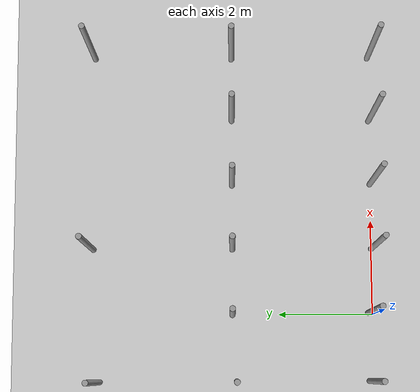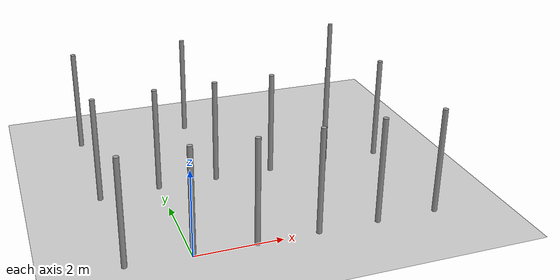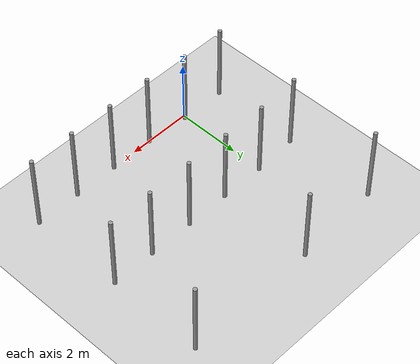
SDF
<sdf version="1.6">
 <world name="default">
  <model name="ground_plane">
   <static>1</static>
   <link name="link">
    <collision name="collision">
     <geometry><plane><normal>0 0 1</normal><size>100 100</size></plane></geometry>
     <surface><friction><ode><mu>100</mu><mu2>50</mu2></ode></friction></surface>
    </collision>
    <visual name="visual">
     <cast_shadows>0</cast_shadows>
     <geometry><plane><normal>0 0 1</normal><size>100 100</size></plane></geometry>
     <material>
      <script><uri>file://media/materials/scripts/gazebo.material</uri><name>Gazebo/Grey</name></script>
     </material>
    </visual>
   </link>
  </model>
  <model name="pole_8">
   <link name="link_0">
    <inertial>
     <mass>0.0364582</mass>
     <inertia>
      <ixx>0.00312124</ixx>
      <ixy>0</ixy>
      <ixz>0</ixz>
      <iyy>0.00312124</iyy>
      <iyz>0</iyz>
      <izz>0.00016615</izz>
     </inertia>
    </inertial>
    <visual name="visual">
     <geometry><cylinder><radius>0.06</radius><length>2.5</length></cylinder></geometry>
     <material>
      <lighting>1</lighting>
      <script><uri>file://media/materials/scripts/gazebo.material</uri><name>Gazebo/Grey</name></script>
      <ambient>0.3 0.3 0.3 1</ambient>
      <diffuse>0.7 0.7 0.7 1</diffuse>
      <specular>0.01 0.01 0.01 1</specular>
      <emissive>0 0 0 1</emissive>
      <shader type="vertex"><normal_map>__default__</normal_map></shader>
     </material>
    </visual>
    <collision name="collision">
     <geometry><cylinder><radius>0.06</radius><length>2.5</length></cylinder></geometry>
     <surface>
      <friction>
       <ode><mu>1</mu><mu2>1</mu2><fdir1>0 0 0</fdir1><slip1>0</slip1><slip2>0</slip2></ode>
       <torsional>
        <coefficient>1</coefficient>
        <patch_radius>0</patch_radius>
        <surface_radius>0</surface_radius>
        <use_patch_radius>1</use_patch_radius>
        <ode><slip>0</slip></ode>
       </torsional>
      </friction>
      <bounce><restitution_coefficient>0</restitution_coefficient><threshold>1e+06</threshold></bounce>
      <contact>
       <collide_without_contact>0</collide_without_contact>
       <collide_without_contact_bitmask>1</collide_without_contact_bitmask>
       <collide_bitmask>1</collide_bitmask>
       <ode>
        <soft_cfm>0</soft_cfm>
        <soft_erp>0.2</soft_erp>
        <kp>1e+13</kp>
        <kd>1</kd>
        <max_vel>0.01</max_vel>
        <min_depth>0</min_depth>
       </ode>
       <bullet>
        <split_impulse>1</split_impulse>
        <split_impulse_penetration_threshold>-0.01</split_impulse_penetration_threshold>
        <soft_cfm>0</soft_cfm>
        <soft_erp>0.2</soft_erp>
        <kp>1e+13</kp>
        <kd>1</kd>
       </bullet>
      </contact>
     </surface>
    </collision>
   </link>
   <static>0</static>
   <pose>1.40423 0.001539 1.24999 -1e-06 -0 -0.019471</pose>
  </model>
  <model name="pole_9">
   <link name="link_0">
    <inertial>
     <mass>0.0364582</mass>
     <inertia>
      <ixx>0.00312124</ixx>
      <ixy>0</ixy>
      <ixz>0</ixz>
      <iyy>0.00312124</iyy>
      <iyz>0</iyz>
      <izz>0.00016615</izz>
     </inertia>
    </inertial>
    <visual name="visual">
     <geometry><cylinder><radius>0.06</radius><length>2.5</length></cylinder></geometry>
     <material>
      <lighting>1</lighting>
      <script><uri>file://media/materials/scripts/gazebo.material</uri><name>Gazebo/Grey</name></script>
      <ambient>0.3 0.3 0.3 1</ambient>
      <diffuse>0.7 0.7 0.7 1</diffuse>
      <specular>0.01 0.01 0.01 1</specular>
      <emissive>0 0 0 1</emissive>
      <shader type="vertex"><normal_map>__default__</normal_map></shader>
     </material>
    </visual>
    <collision name="collision">
     <geometry><cylinder><radius>0.06</radius><length>2.5</length></cylinder></geometry>
     <surface>
      <friction>
       <ode><mu>1</mu><mu2>1</mu2><fdir1>0 0 0</fdir1><slip1>0</slip1><slip2>0</slip2></ode>
       <torsional>
        <coefficient>1</coefficient>
        <patch_radius>0</patch_radius>
        <surface_radius>0</surface_radius>
        <use_patch_radius>1</use_patch_radius>
        <ode><slip>0</slip></ode>
       </torsional>
      </friction>
      <bounce><restitution_coefficient>0</restitution_coefficient><threshold>1e+06</threshold></bounce>
      <contact>
       <collide_without_contact>0</collide_without_contact>
       <collide_without_contact_bitmask>1</collide_without_contact_bitmask>
       <collide_bitmask>1</collide_bitmask>
       <ode>
        <soft_cfm>0</soft_cfm>
        <soft_erp>0.2</soft_erp>
        <kp>1e+13</kp>
        <kd>1</kd>
        <max_vel>0.01</max_vel>
        <min_depth>0</min_depth>
       </ode>
       <bullet>
        <split_impulse>1</split_impulse>
        <split_impulse_penetration_threshold>-0.01</split_impulse_penetration_threshold>
        <soft_cfm>0</soft_cfm>
        <soft_erp>0.2</soft_erp>
        <kp>1e+13</kp>
        <kd>1</kd>
       </bullet>
      </contact>
     </surface>
    </collision>
   </link>
   <static>0</static>
   <pose>2.80806 0.001853 1.25 -1e-06 1e-06 -0.039469</pose>
  </model>
  <model name="pole_10">
   <link name="link_0">
    <inertial>
     <mass>0.0364582</mass>
     <inertia>
      <ixx>0.00312124</ixx>
      <ixy>0</ixy>
      <ixz>0</ixz>
      <iyy>0.00312124</iyy>
      <iyz>0</iyz>
      <izz>0.00016615</izz>
     </inertia>
    </inertial>
    <visual name="visual">
     <geometry><cylinder><radius>0.06</radius><length>2.5</length></cylinder></geometry>
     <material>
      <lighting>1</lighting>
      <script><uri>file://media/materials/scripts/gazebo.material</uri><name>Gazebo/Grey</name></script>
      <ambient>0.3 0.3 0.3 1</ambient>
      <diffuse>0.7 0.7 0.7 1</diffuse>
      <specular>0.01 0.01 0.01 1</specular>
      <emissive>0 0 0 1</emissive>
      <shader type="vertex"><normal_map>__default__</normal_map></shader>
     </material>
    </visual>
    <collision name="collision">
     <geometry><cylinder><radius>0.06</radius><length>2.5</length></cylinder></geometry>
     <surface>
      <friction>
       <ode><mu>1</mu><mu2>1</mu2><fdir1>0 0 0</fdir1><slip1>0</slip1><slip2>0</slip2></ode>
       <torsional>
        <coefficient>1</coefficient>
        <patch_radius>0</patch_radius>
        <surface_radius>0</surface_radius>
        <use_patch_radius>1</use_patch_radius>
        <ode><slip>0</slip></ode>
       </torsional>
      </friction>
      <bounce><restitution_coefficient>0</restitution_coefficient><threshold>1e+06</threshold></bounce>
      <contact>
       <collide_without_contact>0</collide_without_contact>
       <collide_without_contact_bitmask>1</collide_without_contact_bitmask>
       <collide_bitmask>1</collide_bitmask>
       <ode>
        <soft_cfm>0</soft_cfm>
        <soft_erp>0.2</soft_erp>
        <kp>1e+13</kp>
        <kd>1</kd>
        <max_vel>0.01</max_vel>
        <min_depth>0</min_depth>
       </ode>
       <bullet>
        <split_impulse>1</split_impulse>
        <split_impulse_penetration_threshold>-0.01</split_impulse_penetration_threshold>
        <soft_cfm>0</soft_cfm>
        <soft_erp>0.2</soft_erp>
        <kp>1e+13</kp>
        <kd>1</kd>
       </bullet>
      </contact>
     </surface>
    </collision>
   </link>
   <static>0</static>
   <pose>4.20398 0.001744 1.25 -1e-06 -0 -0.023131</pose>
  </model>
  <model name="pole_11">
   <link name="link_0">
    <inertial>
     <mass>0.0364582</mass>
     <inertia>
      <ixx>0.00312124</ixx>
      <ixy>0</ixy>
      <ixz>0</ixz>
      <iyy>0.00312124</iyy>
      <iyz>0</iyz>
      <izz>0.00016615</izz>
     </inertia>
    </inertial>
    <visual name="visual">
     <geometry><cylinder><radius>0.06</radius><length>2.5</length></cylinder></geometry>
     <material>
      <lighting>1</lighting>
      <script><uri>file://media/materials/scripts/gazebo.material</uri><name>Gazebo/Grey</name></script>
      <ambient>0.3 0.3 0.3 1</ambient>
      <diffuse>0.7 0.7 0.7 1</diffuse>
      <specular>0.01 0.01 0.01 1</specular>
      <emissive>0 0 0 1</emissive>
      <shader type="vertex"><normal_map>__default__</normal_map></shader>
     </material>
    </visual>
    <collision name="collision">
     <geometry><cylinder><radius>0.06</radius><length>2.5</length></cylinder></geometry>
     <surface>
      <friction>
       <ode><mu>1</mu><mu2>1</mu2><fdir1>0 0 0</fdir1><slip1>0</slip1><slip2>0</slip2></ode>
       <torsional>
        <coefficient>1</coefficient>
        <patch_radius>0</patch_radius>
        <surface_radius>0</surface_radius>
        <use_patch_radius>1</use_patch_radius>
        <ode><slip>0</slip></ode>
       </torsional>
      </friction>
      <bounce><restitution_coefficient>0</restitution_coefficient><threshold>1e+06</threshold></bounce>
      <contact>
       <collide_without_contact>0</collide_without_contact>
       <collide_without_contact_bitmask>1</collide_without_contact_bitmask>
       <collide_bitmask>1</collide_bitmask>
       <ode>
        <soft_cfm>0</soft_cfm>
        <soft_erp>0.2</soft_erp>
        <kp>1e+13</kp>
        <kd>1</kd>
        <max_vel>0.01</max_vel>
        <min_depth>0</min_depth>
       </ode>
       <bullet>
        <split_impulse>1</split_impulse>
        <split_impulse_penetration_threshold>-0.01</split_impulse_penetration_threshold>
        <soft_cfm>0</soft_cfm>
        <soft_erp>0.2</soft_erp>
        <kp>1e+13</kp>
        <kd>1</kd>
       </bullet>
      </contact>
     </surface>
    </collision>
   </link>
   <static>0</static>
   <pose>5.61624 0.001522 1.25 -1e-06 -1e-06 -0.021984</pose>
  </model>
  <model name="pole_11_clone">
   <link name="link_0">
    <inertial>
     <mass>0.0364582</mass>
     <inertia>
      <ixx>0.00312124</ixx>
      <ixy>0</ixy>
      <ixz>0</ixz>
      <iyy>0.00312124</iyy>
      <iyz>0</iyz>
      <izz>0.00016615</izz>
     </inertia>
    </inertial>
    <visual name="visual">
     <geometry><cylinder><radius>0.06</radius><length>2.5</length></cylinder></geometry>
     <material>
      <lighting>1</lighting>
      <script><uri>file://media/materials/scripts/gazebo.material</uri><name>Gazebo/Grey</name></script>
      <ambient>0.3 0.3 0.3 1</ambient>
      <diffuse>0.7 0.7 0.7 1</diffuse>
      <specular>0.01 0.01 0.01 1</specular>
      <emissive>0 0 0 1</emissive>
      <shader type="vertex"><normal_map>__default__</normal_map></shader>
     </material>
    </visual>
    <collision name="collision">
     <geometry><cylinder><radius>0.06</radius><length>2.5</length></cylinder></geometry>
     <surface>
      <friction>
       <ode><mu>1</mu><mu2>1</mu2><fdir1>0 0 0</fdir1><slip1>0</slip1><slip2>0</slip2></ode>
       <torsional>
        <coefficient>1</coefficient>
        <patch_radius>0</patch_radius>
        <surface_radius>0</surface_radius>
        <use_patch_radius>1</use_patch_radius>
        <ode><slip>0</slip></ode>
       </torsional>
      </friction>
      <bounce><restitution_coefficient>0</restitution_coefficient><threshold>1e+06</threshold></bounce>
      <contact>
       <collide_without_contact>0</collide_without_contact>
       <collide_without_contact_bitmask>1</collide_without_contact_bitmask>
       <collide_bitmask>1</collide_bitmask>
       <ode>
        <soft_cfm>0</soft_cfm>
        <soft_erp>0.2</soft_erp>
        <kp>1e+13</kp>
        <kd>1</kd>
        <max_vel>0.01</max_vel>
        <min_depth>0</min_depth>
       </ode>
       <bullet>
        <split_impulse>1</split_impulse>
        <split_impulse_penetration_threshold>-0.01</split_impulse_penetration_threshold>
        <soft_cfm>0</soft_cfm>
        <soft_erp>0.2</soft_erp>
        <kp>1e+13</kp>
        <kd>1</kd>
       </bullet>
      </contact>
     </surface>
    </collision>
   </link>
   <static>0</static>
   <pose>0.00073 2.98389 1.25 0 -1e-06 -0.029217</pose>
  </model>
  <model name="pole_2">
   <link name="link_0">
    <inertial>
     <mass>0.0364582</mass>
     <inertia>
      <ixx>0.00312124</ixx>
      <ixy>0</ixy>
      <ixz>0</ixz>
      <iyy>0.00312124</iyy>
      <iyz>0</iyz>
      <izz>0.00016615</izz>
     </inertia>
    </inertial>
    <visual name="visual">
     <geometry><cylinder><radius>0.06</radius><length>2.5</length></cylinder></geometry>
     <material>
      <lighting>1</lighting>
      <script><uri>file://media/materials/scripts/gazebo.material</uri><name>Gazebo/Grey</name></script>
      <ambient>0.3 0.3 0.3 1</ambient>
      <diffuse>0.7 0.7 0.7 1</diffuse>
      <specular>0.01 0.01 0.01 1</specular>
      <emissive>0 0 0 1</emissive>
      <shader type="vertex"><normal_map>__default__</normal_map></shader>
     </material>
    </visual>
    <collision name="collision">
     <geometry><cylinder><radius>0.06</radius><length>2.5</length></cylinder></geometry>
     <surface>
      <friction>
       <ode><mu>1</mu><mu2>1</mu2><fdir1>0 0 0</fdir1><slip1>0</slip1><slip2>0</slip2></ode>
       <torsional>
        <coefficient>1</coefficient>
        <patch_radius>0</patch_radius>
        <surface_radius>0</surface_radius>
        <use_patch_radius>1</use_patch_radius>
        <ode><slip>0</slip></ode>
       </torsional>
      </friction>
      <bounce><restitution_coefficient>0</restitution_coefficient><threshold>1e+06</threshold></bounce>
      <contact>
       <collide_without_contact>0</collide_without_contact>
       <collide_without_contact_bitmask>1</collide_without_contact_bitmask>
       <collide_bitmask>1</collide_bitmask>
       <ode>
        <soft_cfm>0</soft_cfm>
        <soft_erp>0.2</soft_erp>
        <kp>1e+13</kp>
        <kd>1</kd>
        <max_vel>0.01</max_vel>
        <min_depth>0</min_depth>
       </ode>
       <bullet>
        <split_impulse>1</split_impulse>
        <split_impulse_penetration_threshold>-0.01</split_impulse_penetration_threshold>
        <soft_cfm>0</soft_cfm>
        <soft_erp>0.2</soft_erp>
        <kp>1e+13</kp>
        <kd>1</kd>
       </bullet>
      </contact>
     </surface>
    </collision>
   </link>
   <static>0</static>
   <pose>0.034226 0.094479 1.25 -1e-06 -1e-06 0.044999</pose>
  </model>
  <model name="pole_3">
   <link name="link_0">
    <inertial>
     <mass>0.0364582</mass>
     <inertia>
      <ixx>0.00312124</ixx>
      <ixy>0</ixy>
      <ixz>0</ixz>
      <iyy>0.00312124</iyy>
      <iyz>0</iyz>
      <izz>0.00016615</izz>
     </inertia>
    </inertial>
    <visual name="visual">
     <geometry><cylinder><radius>0.06</radius><length>2.5</length></cylinder></geometry>
     <material>
      <lighting>1</lighting>
      <script><uri>file://media/materials/scripts/gazebo.material</uri><name>Gazebo/Grey</name></script>
      <ambient>0.3 0.3 0.3 1</ambient>
      <diffuse>0.7 0.7 0.7 1</diffuse>
      <specular>0.01 0.01 0.01 1</specular>
      <emissive>0 0 0 1</emissive>
      <shader type="vertex"><normal_map>__default__</normal_map></shader>
     </material>
    </visual>
    <collision name="collision">
     <geometry><cylinder><radius>0.06</radius><length>2.5</length></cylinder></geometry>
     <surface>
      <friction>
       <ode><mu>1</mu><mu2>1</mu2><fdir1>0 0 0</fdir1><slip1>0</slip1><slip2>0</slip2></ode>
       <torsional>
        <coefficient>1</coefficient>
        <patch_radius>0</patch_radius>
        <surface_radius>0</surface_radius>
        <use_patch_radius>1</use_patch_radius>
        <ode><slip>0</slip></ode>
       </torsional>
      </friction>
      <bounce><restitution_coefficient>0</restitution_coefficient><threshold>1e+06</threshold></bounce>
      <contact>
       <collide_without_contact>0</collide_without_contact>
       <collide_without_contact_bitmask>1</collide_without_contact_bitmask>
       <collide_bitmask>1</collide_bitmask>
       <ode>
        <soft_cfm>0</soft_cfm>
        <soft_erp>0.2</soft_erp>
        <kp>1e+13</kp>
        <kd>1</kd>
        <max_vel>0.01</max_vel>
        <min_depth>0</min_depth>
       </ode>
       <bullet>
        <split_impulse>1</split_impulse>
        <split_impulse_penetration_threshold>-0.01</split_impulse_penetration_threshold>
        <soft_cfm>0</soft_cfm>
        <soft_erp>0.2</soft_erp>
        <kp>1e+13</kp>
        <kd>1</kd>
       </bullet>
      </contact>
     </surface>
    </collision>
   </link>
   <static>0</static>
   <pose>1.40475 2.98137 1.25 -1e-06 1e-06 -0.015925</pose>
  </model>
  <model name="pole_5">
   <link name="link_0">
    <inertial>
     <mass>0.0364582</mass>
     <inertia>
      <ixx>0.00312124</ixx>
      <ixy>0</ixy>
      <ixz>0</ixz>
      <iyy>0.00312124</iyy>
      <iyz>0</iyz>
      <izz>0.00016615</izz>
     </inertia>
    </inertial>
    <visual name="visual">
     <geometry><cylinder><radius>0.06</radius><length>2.5</length></cylinder></geometry>
     <material>
      <lighting>1</lighting>
      <script><uri>file://media/materials/scripts/gazebo.material</uri><name>Gazebo/Grey</name></script>
      <ambient>0.3 0.3 0.3 1</ambient>
      <diffuse>0.7 0.7 0.7 1</diffuse>
      <specular>0.01 0.01 0.01 1</specular>
      <emissive>0 0 0 1</emissive>
      <shader type="vertex"><normal_map>__default__</normal_map></shader>
     </material>
    </visual>
    <collision name="collision">
     <geometry><cylinder><radius>0.06</radius><length>2.5</length></cylinder></geometry>
     <surface>
      <friction>
       <ode><mu>1</mu><mu2>1</mu2><fdir1>0 0 0</fdir1><slip1>0</slip1><slip2>0</slip2></ode>
       <torsional>
        <coefficient>1</coefficient>
        <patch_radius>0</patch_radius>
        <surface_radius>0</surface_radius>
        <use_patch_radius>1</use_patch_radius>
        <ode><slip>0</slip></ode>
       </torsional>
      </friction>
      <bounce><restitution_coefficient>0</restitution_coefficient><threshold>1e+06</threshold></bounce>
      <contact>
       <collide_without_contact>0</collide_without_contact>
       <collide_without_contact_bitmask>1</collide_without_contact_bitmask>
       <collide_bitmask>1</collide_bitmask>
       <ode>
        <soft_cfm>0</soft_cfm>
        <soft_erp>0.2</soft_erp>
        <kp>1e+13</kp>
        <kd>1</kd>
        <max_vel>0.01</max_vel>
        <min_depth>0</min_depth>
       </ode>
       <bullet>
        <split_impulse>1</split_impulse>
        <split_impulse_penetration_threshold>-0.01</split_impulse_penetration_threshold>
        <soft_cfm>0</soft_cfm>
        <soft_erp>0.2</soft_erp>
        <kp>1e+13</kp>
        <kd>1</kd>
       </bullet>
      </contact>
     </surface>
    </collision>
   </link>
   <static>0</static>
   <pose>2.79586 2.98136 1.25 -1e-06 -1e-06 -0.016559</pose>
  </model>
  <model name="pole_6">
   <link name="link_0">
    <inertial>
     <mass>0.0364582</mass>
     <inertia>
      <ixx>0.00312124</ixx>
      <ixy>0</ixy>
      <ixz>0</ixz>
      <iyy>0.00312124</iyy>
      <iyz>0</iyz>
      <izz>0.00016615</izz>
     </inertia>
    </inertial>
    <visual name="visual">
     <geometry><cylinder><radius>0.06</radius><length>2.5</length></cylinder></geometry>
     <material>
      <lighting>1</lighting>
      <script><uri>file://media/materials/scripts/gazebo.material</uri><name>Gazebo/Grey</name></script>
      <ambient>0.3 0.3 0.3 1</ambient>
      <diffuse>0.7 0.7 0.7 1</diffuse>
      <specular>0.01 0.01 0.01 1</specular>
      <emissive>0 0 0 1</emissive>
      <shader type="vertex"><normal_map>__default__</normal_map></shader>
     </material>
    </visual>
    <collision name="collision">
     <geometry><cylinder><radius>0.06</radius><length>2.5</length></cylinder></geometry>
     <surface>
      <friction>
       <ode><mu>1</mu><mu2>1</mu2><fdir1>0 0 0</fdir1><slip1>0</slip1><slip2>0</slip2></ode>
       <torsional>
        <coefficient>1</coefficient>
        <patch_radius>0</patch_radius>
        <surface_radius>0</surface_radius>
        <use_patch_radius>1</use_patch_radius>
        <ode><slip>0</slip></ode>
       </torsional>
      </friction>
      <bounce><restitution_coefficient>0</restitution_coefficient><threshold>1e+06</threshold></bounce>
      <contact>
       <collide_without_contact>0</collide_without_contact>
       <collide_without_contact_bitmask>1</collide_without_contact_bitmask>
       <collide_bitmask>1</collide_bitmask>
       <ode>
        <soft_cfm>0</soft_cfm>
        <soft_erp>0.2</soft_erp>
        <kp>1e+13</kp>
        <kd>1</kd>
        <max_vel>0.01</max_vel>
        <min_depth>0</min_depth>
       </ode>
       <bullet>
        <split_impulse>1</split_impulse>
        <split_impulse_penetration_threshold>-0.01</split_impulse_penetration_threshold>
        <soft_cfm>0</soft_cfm>
        <soft_erp>0.2</soft_erp>
        <kp>1e+13</kp>
        <kd>1</kd>
       </bullet>
      </contact>
     </surface>
    </collision>
   </link>
   <static>0</static>
   <pose>4.22241 2.98121 1.25 -1e-06 1e-06 -0.014336</pose>
  </model>
  <model name="pole_7">
   <link name="link_0">
    <inertial>
     <mass>0.0364582</mass>
     <inertia>
      <ixx>0.00312124</ixx>
      <ixy>0</ixy>
      <ixz>0</ixz>
      <iyy>0.00312124</iyy>
      <iyz>0</iyz>
      <izz>0.00016615</izz>
     </inertia>
    </inertial>
    <visual name="visual">
     <geometry><cylinder><radius>0.06</radius><length>2.5</length></cylinder></geometry>
     <material>
      <lighting>1</lighting>
      <script><uri>file://media/materials/scripts/gazebo.material</uri><name>Gazebo/Grey</name></script>
      <ambient>0.3 0.3 0.3 1</ambient>
      <diffuse>0.7 0.7 0.7 1</diffuse>
      <specular>0.01 0.01 0.01 1</specular>
      <emissive>0 0 0 1</emissive>
      <shader type="vertex"><normal_map>__default__</normal_map></shader>
     </material>
    </visual>
    <collision name="collision">
     <geometry><cylinder><radius>0.06</radius><length>2.5</length></cylinder></geometry>
     <surface>
      <friction>
       <ode><mu>1</mu><mu2>1</mu2><fdir1>0 0 0</fdir1><slip1>0</slip1><slip2>0</slip2></ode>
       <torsional>
        <coefficient>1</coefficient>
        <patch_radius>0</patch_radius>
        <surface_radius>0</surface_radius>
        <use_patch_radius>1</use_patch_radius>
        <ode><slip>0</slip></ode>
       </torsional>
      </friction>
      <bounce><restitution_coefficient>0</restitution_coefficient><threshold>1e+06</threshold></bounce>
      <contact>
       <collide_without_contact>0</collide_without_contact>
       <collide_without_contact_bitmask>1</collide_without_contact_bitmask>
       <collide_bitmask>1</collide_bitmask>
       <ode>
        <soft_cfm>0</soft_cfm>
        <soft_erp>0.2</soft_erp>
        <kp>1e+13</kp>
        <kd>1</kd>
        <max_vel>0.01</max_vel>
        <min_depth>0</min_depth>
       </ode>
       <bullet>
        <split_impulse>1</split_impulse>
        <split_impulse_penetration_threshold>-0.01</split_impulse_penetration_threshold>
        <soft_cfm>0</soft_cfm>
        <soft_erp>0.2</soft_erp>
        <kp>1e+13</kp>
        <kd>1</kd>
       </bullet>
      </contact>
     </surface>
    </collision>
   </link>
   <static>0</static>
   <pose>5.60737 2.98126 1.25 1e-06 3e-06 -0.014952</pose>
  </model>
  <model name="pole_12">
   <link name="link_0">
    <inertial>
     <mass>0.0364582</mass>
     <inertia>
      <ixx>0.00312124</ixx>
      <ixy>0</ixy>
      <ixz>0</ixz>
      <iyy>0.00312124</iyy>
      <iyz>0</iyz>
      <izz>0.00016615</izz>
     </inertia>
    </inertial>
    <visual name="visual">
     <geometry><cylinder><radius>0.06</radius><length>2.5</length></cylinder></geometry>
     <material>
      <lighting>1</lighting>
      <script><uri>file://media/materials/scripts/gazebo.material</uri><name>Gazebo/Grey</name></script>
      <ambient>0.3 0.3 0.3 1</ambient>
      <diffuse>0.7 0.7 0.7 1</diffuse>
      <specular>0.01 0.01 0.01 1</specular>
      <emissive>0 0 0 1</emissive>
      <shader type="vertex"><normal_map>__default__</normal_map></shader>
     </material>
    </visual>
    <collision name="collision">
     <geometry><cylinder><radius>0.06</radius><length>2.5</length></cylinder></geometry>
     <surface>
      <friction>
       <ode><mu>1</mu><mu2>1</mu2><fdir1>0 0 0</fdir1><slip1>0</slip1><slip2>0</slip2></ode>
       <torsional>
        <coefficient>1</coefficient>
        <patch_radius>0</patch_radius>
        <surface_radius>0</surface_radius>
        <use_patch_radius>1</use_patch_radius>
        <ode><slip>0</slip></ode>
       </torsional>
      </friction>
      <bounce><restitution_coefficient>0</restitution_coefficient><threshold>1e+06</threshold></bounce>
      <contact>
       <collide_without_contact>0</collide_without_contact>
       <collide_without_contact_bitmask>1</collide_without_contact_bitmask>
       <collide_bitmask>1</collide_bitmask>
       <ode>
        <soft_cfm>0</soft_cfm>
        <soft_erp>0.2</soft_erp>
        <kp>1e+13</kp>
        <kd>1</kd>
        <max_vel>0.01</max_vel>
        <min_depth>0</min_depth>
       </ode>
       <bullet>
        <split_impulse>1</split_impulse>
        <split_impulse_penetration_threshold>-0.01</split_impulse_penetration_threshold>
        <soft_cfm>0</soft_cfm>
        <soft_erp>0.2</soft_erp>
        <kp>1e+13</kp>
        <kd>1</kd>
       </bullet>
      </contact>
     </surface>
    </collision>
   </link>
   <static>0</static>
   <pose>1.41364 5.96122 1.24999 -1e-06 4e-06 -0.013851</pose>
  </model>
  <model name="pole_15">
   <link name="link_0">
    <inertial>
     <mass>0.0364582</mass>
     <inertia>
      <ixx>0.00312124</ixx>
      <ixy>0</ixy>
      <ixz>0</ixz>
      <iyy>0.00312124</iyy>
      <iyz>0</iyz>
      <izz>0.00016615</izz>
     </inertia>
    </inertial>
    <visual name="visual">
     <geometry><cylinder><radius>0.06</radius><length>2.5</length></cylinder></geometry>
     <material>
      <lighting>1</lighting>
      <script><uri>file://media/materials/scripts/gazebo.material</uri><name>Gazebo/Grey</name></script>
      <ambient>0.3 0.3 0.3 1</ambient>
      <diffuse>0.7 0.7 0.7 1</diffuse>
      <specular>0.01 0.01 0.01 1</specular>
      <emissive>0 0 0 1</emissive>
      <shader type="vertex"><normal_map>__default__</normal_map></shader>
     </material>
    </visual>
    <collision name="collision">
     <geometry><cylinder><radius>0.06</radius><length>2.5</length></cylinder></geometry>
     <surface>
      <friction>
       <ode><mu>1</mu><mu2>1</mu2><fdir1>0 0 0</fdir1><slip1>0</slip1><slip2>0</slip2></ode>
       <torsional>
        <coefficient>1</coefficient>
        <patch_radius>0</patch_radius>
        <surface_radius>0</surface_radius>
        <use_patch_radius>1</use_patch_radius>
        <ode><slip>0</slip></ode>
       </torsional>
      </friction>
      <bounce><restitution_coefficient>0</restitution_coefficient><threshold>1e+06</threshold></bounce>
      <contact>
       <collide_without_contact>0</collide_without_contact>
       <collide_without_contact_bitmask>1</collide_without_contact_bitmask>
       <collide_bitmask>1</collide_bitmask>
       <ode>
        <soft_cfm>0</soft_cfm>
        <soft_erp>0.2</soft_erp>
        <kp>1e+13</kp>
        <kd>1</kd>
        <max_vel>0.01</max_vel>
        <min_depth>0</min_depth>
       </ode>
       <bullet>
        <split_impulse>1</split_impulse>
        <split_impulse_penetration_threshold>-0.01</split_impulse_penetration_threshold>
        <soft_cfm>0</soft_cfm>
        <soft_erp>0.2</soft_erp>
        <kp>1e+13</kp>
        <kd>1</kd>
       </bullet>
      </contact>
     </surface>
    </collision>
   </link>
   <static>0</static>
   <pose>5.6235 5.96097 1.25 -1e-06 1e-06 -0.010208</pose>
  </model>
  <model name="pole_2_clone">
   <link name="link_0">
    <inertial>
     <mass>0.0364582</mass>
     <inertia>
      <ixx>0.00312124</ixx>
      <ixy>0</ixy>
      <ixz>0</ixz>
      <iyy>0.00312124</iyy>
      <iyz>0</iyz>
      <izz>0.00016615</izz>
     </inertia>
    </inertial>
    <visual name="visual">
     <geometry><cylinder><radius>0.06</radius><length>2.5</length></cylinder></geometry>
     <material>
      <lighting>1</lighting>
      <script><uri>file://media/materials/scripts/gazebo.material</uri><name>Gazebo/Grey</name></script>
      <ambient>0.3 0.3 0.3 1</ambient>
      <diffuse>0.7 0.7 0.7 1</diffuse>
      <specular>0.01 0.01 0.01 1</specular>
      <emissive>0 0 0 1</emissive>
      <shader type="vertex"><normal_map>__default__</normal_map></shader>
     </material>
    </visual>
    <collision name="collision">
     <geometry><cylinder><radius>0.06</radius><length>2.5</length></cylinder></geometry>
     <surface>
      <friction>
       <ode><mu>1</mu><mu2>1</mu2><fdir1>0 0 0</fdir1><slip1>0</slip1><slip2>0</slip2></ode>
       <torsional>
        <coefficient>1</coefficient>
        <patch_radius>0</patch_radius>
        <surface_radius>0</surface_radius>
        <use_patch_radius>1</use_patch_radius>
        <ode><slip>0</slip></ode>
       </torsional>
      </friction>
      <bounce><restitution_coefficient>0</restitution_coefficient><threshold>1e+06</threshold></bounce>
      <contact>
       <collide_without_contact>0</collide_without_contact>
       <collide_without_contact_bitmask>1</collide_without_contact_bitmask>
       <collide_bitmask>1</collide_bitmask>
       <ode>
        <soft_cfm>0</soft_cfm>
        <soft_erp>0.2</soft_erp>
        <kp>1e+13</kp>
        <kd>1</kd>
        <max_vel>0.01</max_vel>
        <min_depth>0</min_depth>
       </ode>
       <bullet>
        <split_impulse>1</split_impulse>
        <split_impulse_penetration_threshold>-0.01</split_impulse_penetration_threshold>
        <soft_cfm>0</soft_cfm>
        <soft_erp>0.2</soft_erp>
        <kp>1e+13</kp>
        <kd>1</kd>
       </bullet>
      </contact>
     </surface>
    </collision>
   </link>
   <static>0</static>
   <pose>-1.39993 0.092328 1.25 -1e-06 -0 0.042647</pose>
  </model>
  <model name="pole_2_clone_0">
   <link name="link_0">
    <inertial>
     <mass>0.0364582</mass>
     <inertia>
      <ixx>0.00312124</ixx>
      <ixy>0</ixy>
      <ixz>0</ixz>
      <iyy>0.00312124</iyy>
      <iyz>0</iyz>
      <izz>0.00016615</izz>
     </inertia>
    </inertial>
    <visual name="visual">
     <geometry><cylinder><radius>0.06</radius><length>2.5</length></cylinder></geometry>
     <material>
      <lighting>1</lighting>
      <script><uri>file://media/materials/scripts/gazebo.material</uri><name>Gazebo/Grey</name></script>
      <ambient>0.3 0.3 0.3 1</ambient>
      <diffuse>0.7 0.7 0.7 1</diffuse>
      <specular>0.01 0.01 0.01 1</specular>
      <emissive>0 0 0 1</emissive>
      <shader type="vertex"><normal_map>__default__</normal_map></shader>
     </material>
    </visual>
    <collision name="collision">
     <geometry><cylinder><radius>0.06</radius><length>2.5</length></cylinder></geometry>
     <surface>
      <friction>
       <ode><mu>1</mu><mu2>1</mu2><fdir1>0 0 0</fdir1><slip1>0</slip1><slip2>0</slip2></ode>
       <torsional>
        <coefficient>1</coefficient>
        <patch_radius>0</patch_radius>
        <surface_radius>0</surface_radius>
        <use_patch_radius>1</use_patch_radius>
        <ode><slip>0</slip></ode>
       </torsional>
      </friction>
      <bounce><restitution_coefficient>0</restitution_coefficient><threshold>1e+06</threshold></bounce>
      <contact>
       <collide_without_contact>0</collide_without_contact>
       <collide_without_contact_bitmask>1</collide_without_contact_bitmask>
       <collide_bitmask>1</collide_bitmask>
       <ode>
        <soft_cfm>0</soft_cfm>
        <soft_erp>0.2</soft_erp>
        <kp>1e+13</kp>
        <kd>1</kd>
        <max_vel>0.01</max_vel>
        <min_depth>0</min_depth>
       </ode>
       <bullet>
        <split_impulse>1</split_impulse>
        <split_impulse_penetration_threshold>-0.01</split_impulse_penetration_threshold>
        <soft_cfm>0</soft_cfm>
        <soft_erp>0.2</soft_erp>
        <kp>1e+13</kp>
        <kd>1</kd>
       </bullet>
      </contact>
     </surface>
    </collision>
   </link>
   <static>0</static>
   <pose>-1.39995 2.90033 1.25 -1e-06 -3e-06 0.042432</pose>
  </model>
  <model name="pole_2_clone_1">
   <link name="link_0">
    <inertial>
     <mass>0.0364582</mass>
     <inertia>
      <ixx>0.00312124</ixx>
      <ixy>0</ixy>
      <ixz>0</ixz>
      <iyy>0.00312124</iyy>
      <iyz>0</iyz>
      <izz>0.00016615</izz>
     </inertia>
    </inertial>
    <visual name="visual">
     <geometry><cylinder><radius>0.06</radius><length>2.5</length></cylinder></geometry>
     <material>
      <lighting>1</lighting>
      <script><uri>file://media/materials/scripts/gazebo.material</uri><name>Gazebo/Grey</name></script>
      <ambient>0.3 0.3 0.3 1</ambient>
      <diffuse>0.7 0.7 0.7 1</diffuse>
      <specular>0.01 0.01 0.01 1</specular>
      <emissive>0 0 0 1</emissive>
      <shader type="vertex"><normal_map>__default__</normal_map></shader>
     </material>
    </visual>
    <collision name="collision">
     <geometry><cylinder><radius>0.06</radius><length>2.5</length></cylinder></geometry>
     <surface>
      <friction>
       <ode><mu>1</mu><mu2>1</mu2><fdir1>0 0 0</fdir1><slip1>0</slip1><slip2>0</slip2></ode>
       <torsional>
        <coefficient>1</coefficient>
        <patch_radius>0</patch_radius>
        <surface_radius>0</surface_radius>
        <use_patch_radius>1</use_patch_radius>
        <ode><slip>0</slip></ode>
       </torsional>
      </friction>
      <bounce><restitution_coefficient>0</restitution_coefficient><threshold>1e+06</threshold></bounce>
      <contact>
       <collide_without_contact>0</collide_without_contact>
       <collide_without_contact_bitmask>1</collide_without_contact_bitmask>
       <collide_bitmask>1</collide_bitmask>
       <ode>
        <soft_cfm>0</soft_cfm>
        <soft_erp>0.2</soft_erp>
        <kp>1e+13</kp>
        <kd>1</kd>
        <max_vel>0.01</max_vel>
        <min_depth>0</min_depth>
       </ode>
       <bullet>
        <split_impulse>1</split_impulse>
        <split_impulse_penetration_threshold>-0.01</split_impulse_penetration_threshold>
        <soft_cfm>0</soft_cfm>
        <soft_erp>0.2</soft_erp>
        <kp>1e+13</kp>
        <kd>1</kd>
       </bullet>
      </contact>
     </surface>
    </collision>
   </link>
   <static>0</static>
   <pose>-1.39996 5.80028 1.25 -1e-06 -1e-06 0.043465</pose>
  </model>
 </world>
</sdf>
